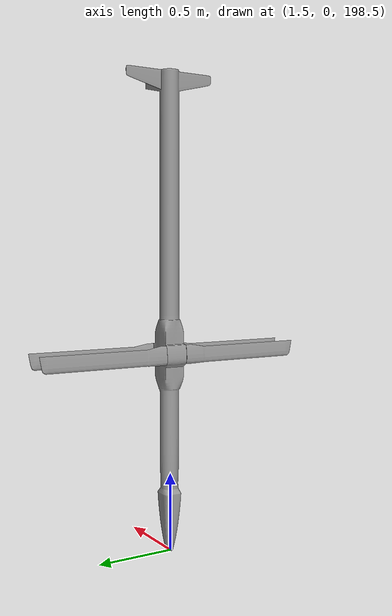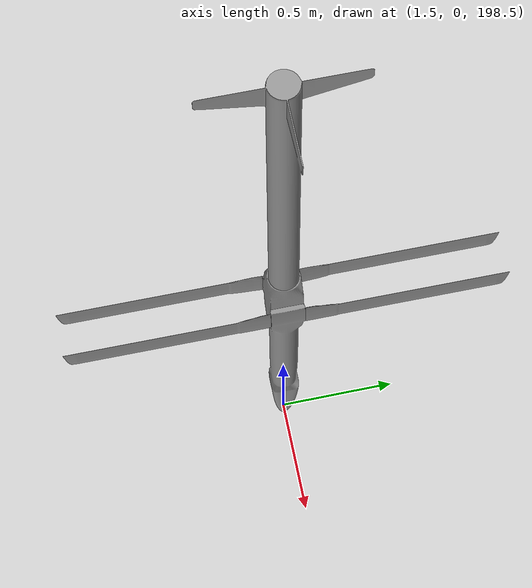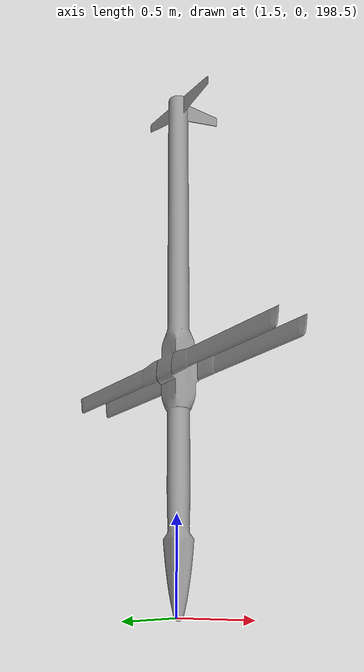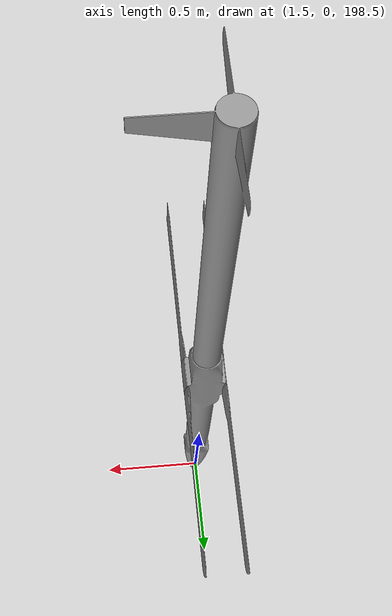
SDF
<?xml version='1.0'?>
<sdf version='1.6'>
  <model name='pitcheron-001-scale-down'>

    <pose>0 0 200 0 1.57 0</pose>

    <link name='base_link'>
      <inertial>
        <mass>47</mass>
        <pose frame=''>0 0 0 0 -0 0</pose>
        <inertia>
          <ixx>0.11644594</ixx>
          <ixy>0</ixy>
          <ixz>0</ixz>
          <iyy>36.28891523</iyy>
          <iyz>0</iyz>
          <izz>36.18768153</izz>
        </inertia>
      </inertial>
      <pose frame=''>0 0 1.490810 0 -0 0</pose>
      <gravity>1</gravity>
      <visual name='base_link_visual'>
        <pose frame=''>0.240000 0 0.020000 0 0 3.14159</pose>
        <geometry>
          <mesh>
            <scale>0.001 0.001 0.001</scale>
            <uri>model://pitcheron-v2/AnalyseModel-Fuselage-003.dae</uri>
          </mesh>
        </geometry>
        <material>
          <script>
            <uri>file://media/materials/scripts/gazebo.material</uri>
            <name>Gazebo/Grey</name>
          </script>
        </material>
        <transparency>0</transparency>
        <cast_shadows>1</cast_shadows>
      </visual>
      <collision name='base_link_collision'>
        <laser_retro>0</laser_retro>
        <max_contacts>10</max_contacts>
        <pose frame=''>0 0 0 0 -0 0</pose>
        <geometry>
          <box>
            <size>3.03932 0.0440676 0.1667</size>
          </box>
        </geometry>
        <surface>
          <friction>
            <ode>
              <mu>1</mu>
              <mu2>1</mu2>
              <fdir1>0 0 0</fdir1>
              <slip1>0</slip1>
              <slip2>0</slip2>
            </ode>
            <torsional>
              <coefficient>1</coefficient>
              <patch_radius>0</patch_radius>
              <surface_radius>0</surface_radius>
              <use_patch_radius>1</use_patch_radius>
              <ode>
                <slip>0</slip>
              </ode>
            </torsional>
          </friction>
          <bounce>
            <restitution_coefficient>0</restitution_coefficient>
            <threshold>1e+06</threshold>
          </bounce>
          <contact>
            <collide_without_contact>0</collide_without_contact>
            <collide_without_contact_bitmask>1</collide_without_contact_bitmask>
            <collide_bitmask>1</collide_bitmask>
            <ode>
              <soft_cfm>0</soft_cfm>
              <soft_erp>0.2</soft_erp>
              <kp>1e+13</kp>
              <kd>1</kd>
              <max_vel>10</max_vel>
              <min_depth>0.01</min_depth>
            </ode>
            <bullet>
              <split_impulse>1</split_impulse>
              <split_impulse_penetration_threshold>-0.01</split_impulse_penetration_threshold>
              <soft_cfm>0</soft_cfm>
              <soft_erp>0.2</soft_erp>
              <kp>1e+13</kp>
              <kd>1</kd>
            </bullet>
          </contact>
        </surface>
      </collision>
      <velocity_decay/>
    </link>

    <!-- control surfaces links -->

    <link name='elevator_link'>
      <inertial>
        <mass>1e-08</mass>
        <inertia>
          <ixx>1e-06</ixx>
          <ixy>0</ixy>
          <iyy>1e-06</iyy>
          <ixz>0</ixz>
          <iyz>0</iyz>
          <izz>1e-06</izz>
        </inertia>
        <pose frame=''>0 0 0 0 -0 0</pose>
      </inertial>
      <pose frame=''>-1.486622 0 1.507310 0 -0 0</pose>
      <visual name='elevator_link_visual'>
        <pose frame=''>0 0 0 0 -0 0</pose>
        <geometry>
          <box>
            <size>0.107408 0.562568 0.044178</size>
          </box>
        </geometry>
        <material>
          <script>
            <uri>file://media/materials/scripts/gazebo.material</uri>
            <name>Gazebo/Grey</name>
          </script>
        </material>
        <transparency>1</transparency>
        <cast_shadows>1</cast_shadows>
      </visual>
    </link>
    <link name='left_wing_bottom_link'>
      <inertial>
        <mass>1e-08</mass>
        <inertia>
          <ixx>1e-06</ixx>
          <ixy>0</ixy>
          <iyy>1e-06</iyy>
          <ixz>0</ixz>
          <iyz>0</iyz>
          <izz>1e-06</izz>
        </inertia>
        <pose frame=''>0 0 0 0 -0 0</pose>
      </inertial>
      <pose frame=''>0.270000 0.110000 1.420000 0 0 0</pose>
      <visual name='left_wing_bottom_link_visual'>
        <pose frame=''>-0.030000 -0.110000 0.090000 0 -0 3.14159</pose>
        <geometry>
          <mesh>
            <scale>0.001 0.001 0.001</scale>
            <uri>model://pitcheron-v2/AnalyseModel-Left-Bottom-Wing-003.dae</uri>
          </mesh>
        </geometry>
        <material>
          <script>
            <uri>file://media/materials/scripts/gazebo.material</uri>
            <name>Gazebo/Grey</name>
          </script>
        </material>
        <transparency>0</transparency>
        <cast_shadows>1</cast_shadows>
      </visual>
    </link>
    <link name='left_wing_top_link'>
      <inertial>
        <mass>1e-08</mass>
        <inertia>
          <ixx>1e-06</ixx>
          <ixy>0</ixy>
          <iyy>1e-06</iyy>
          <ixz>0</ixz>
          <iyz>0</iyz>
          <izz>1e-06</izz>
        </inertia>
        <pose frame=''>0 0 0 0 -0 0</pose>
      </inertial>
      <pose frame=''>0.270000 0.110000 1.600000 0 0 0</pose>
      <visual name='left_wing_top_link_visual'>
        <pose frame=''>-0.030000 -0.110000 -0.090000 0 -0 3.14159</pose>
        <geometry>
          <mesh>
            <scale>0.001 0.001 0.001</scale>
            <uri>model://pitcheron-v2/AnalyseModel-Left-Top-Wing-003.dae</uri>
          </mesh>
        </geometry>
        <material>
          <script>
            <uri>file://media/materials/scripts/gazebo.material</uri>
            <name>Gazebo/Grey</name>
          </script>
        </material>
        <transparency>0</transparency>
        <cast_shadows>1</cast_shadows>
      </visual>
    </link>
    <link name='right_wing_bottom_link'>
      <inertial>
        <mass>1e-08</mass>
        <inertia>
          <ixx>1e-06</ixx>
          <ixy>0</ixy>
          <iyy>1e-06</iyy>
          <ixz>0</ixz>
          <iyz>0</iyz>
          <izz>1e-06</izz>
        </inertia>
        <pose frame=''>0 0 0 0 -0 0</pose>
      </inertial>
      <pose frame=''>0.270000 -0.110000 1.420000 0 0 0</pose>
      <visual name='right_wing_bottom_link_visual'>
        <pose frame=''>-0.030000 0.110000 0.090000 0 -0 3.14159</pose>
        <geometry>
          <mesh>
            <scale>0.001 0.001 0.001</scale>
            <uri>model://pitcheron-v2/AnalyseModel-Right-Bottom-Wing-003.dae</uri>
          </mesh>
        </geometry>
        <material>
          <script>
            <uri>file://media/materials/scripts/gazebo.material</uri>
            <name>Gazebo/Grey</name>
          </script>
        </material>
        <transparency>0</transparency>
        <cast_shadows>1</cast_shadows>
      </visual>
    </link>
    <link name='right_wing_top_link'>
      <inertial>
        <mass>1e-08</mass>
        <inertia>
          <ixx>1e-06</ixx>
          <ixy>0</ixy>
          <iyy>1e-06</iyy>
          <ixz>0</ixz>
          <iyz>0</iyz>
          <izz>1e-06</izz>
        </inertia>
        <pose frame=''>0 0 0 0 -0 0</pose>
      </inertial>
      <pose frame=''>0.270000 -0.110000 1.600000 0 0 0</pose>
      <visual name='right_wing_top_link_visual'>
        <pose frame=''>-0.030000 0.110000 -0.090000 0 -0 3.14159</pose>
        <geometry>
          <mesh>
            <scale>0.001 0.001 0.001</scale>
            <uri>model://pitcheron-v2/AnalyseModel-Right-Top-Wing-003.dae</uri>
          </mesh>
        </geometry>
        <material>
          <script>
            <uri>file://media/materials/scripts/gazebo.material</uri>
            <name>Gazebo/Grey</name>
          </script>
        </material>
        <transparency>0</transparency>
        <cast_shadows>1</cast_shadows>
      </visual>
    </link>
    <link name='rudder_link'>
      <inertial>
        <mass>1e-08</mass>
        <inertia>
          <ixx>1e-06</ixx>
          <ixy>0</ixy>
          <iyy>1e-06</iyy>
          <ixz>0</ixz>
          <iyz>0</iyz>
          <izz>1e-06</izz>
        </inertia>
        <pose frame=''>0 0 0 0 -0 0</pose>
      </inertial>
      <pose frame=''>-1.446240 0 1.682760 0 -0 0</pose>
      <visual name='rudder_link_visual'>
        <pose frame=''>0 0 0 0 -0 0</pose>
        <geometry>
          <box>
            <size>0.130490 0.060154 0.221761</size>
          </box>
        </geometry>
        <material>
          <script>
            <uri>file://media/materials/scripts/gazebo.material</uri>
            <name>Gazebo/Grey</name>
          </script>
          <emissive>0 0 0 1</emissive>
        </material>
        <transparency>1</transparency>
        <cast_shadows>1</cast_shadows>
      </visual>
    </link>

    <!-- sensor and interface links -->

    <link name='pitcheron/imu_link'>
      <pose>0 0 0 0 0 0</pose>
      <inertial>
        <pose>0 0 0 0 0 0</pose>
        <mass>0.015</mass>
        <inertia>
          <ixx>1e-05</ixx>
          <ixy>0</ixy>
          <ixz>0</ixz>
          <iyy>1e-05</iyy>
          <iyz>0</iyz>
          <izz>1e-05</izz>
        </inertia>
      </inertial>
    </link>

    <!-- control surfaces joints -->

    <joint name='elevator_joint' type='fixed'>
      <parent>base_link</parent>
      <child>elevator_link</child>
      <pose frame=''>0 0 0 0 -0.261799 0</pose>
      <physics>
        <ode>
          <limit>
            <cfm>0</cfm>
            <erp>0.2</erp>
          </limit>
          <suspension>
            <cfm>0</cfm>
            <erp>0.2</erp>
          </suspension>
        </ode>
      </physics>
    </joint>
    <joint name='left_wing_bottom_joint' type='revolute'>
      <parent>base_link</parent>
      <child>left_wing_bottom_link</child>
      <pose frame=''>0 0 0 0 -0 0</pose>
      <axis>
        <xyz>0 1 0</xyz>
        <limit>
          <!-- -15/+15 deg. -->
          <lower>-0.261799</lower>
          <upper>0.261799</upper>
        </limit>
        <dynamics>
          <damping>1.000</damping>
        </dynamics>
      </axis>
      <physics>
        <ode>
          <implicit_spring_damper>1</implicit_spring_damper>
        </ode>
      </physics>
    </joint>
    <joint name='left_wing_top_joint' type='revolute'>
      <parent>base_link</parent>
      <child>left_wing_top_link</child>
      <pose frame=''>0 0 0 0 -0 0</pose>
      <axis>
        <xyz>0 1 0</xyz>
        <limit>
          <!-- -15/+15 deg. -->
          <lower>-0.261799</lower>
          <upper>0.261799</upper>
        </limit>
        <dynamics>
          <damping>1.000</damping>
        </dynamics>
      </axis>
      <physics>
        <ode>
          <implicit_spring_damper>1</implicit_spring_damper>
        </ode>
      </physics>
    </joint>
    <joint name='right_wing_bottom_joint' type='revolute'>
      <parent>base_link</parent>
      <child>right_wing_bottom_link</child>
      <pose frame=''>0 0 0 0 -0 0</pose>
      <axis>
        <xyz>0 1 0</xyz>
        <limit>
          <!-- -15/+15 deg. -->
          <lower>-0.261799</lower>
          <upper>0.261799</upper>
        </limit>
        <dynamics>
          <damping>1.000</damping>
        </dynamics>
      </axis>
      <physics>
        <ode>
          <implicit_spring_damper>1</implicit_spring_damper>
        </ode>
      </physics>
    </joint>
    <joint name='right_wing_top_joint' type='revolute'>
      <parent>base_link</parent>
      <child>right_wing_top_link</child>
      <pose frame=''>0 0 0 0 -0 0</pose>
      <axis>
        <xyz>0 1 0</xyz>
        <limit>
          <!-- -15/+15 deg. -->
          <lower>-0.261799</lower>
          <upper>0.261799</upper>
        </limit>
        <dynamics>
          <damping>1.000</damping>
        </dynamics>
      </axis>
      <physics>
        <ode>
          <implicit_spring_damper>1</implicit_spring_damper>
        </ode>
      </physics>
    </joint>
    <joint name='rudder_joint' type='fixed'>
      <parent>base_link</parent>
      <child>rudder_link</child>
      <pose frame=''>0 0 0 0 -0 0</pose>
      <physics>
        <ode>
          <limit>
            <cfm>0</cfm>
            <erp>0.2</erp>
          </limit>
          <suspension>
            <cfm>0</cfm>
            <erp>0.2</erp>
          </suspension>
        </ode>
      </physics>
    </joint>

    <!-- sensor and interface joints -->
    <joint name='pitcheron/imu_joint' type='revolute'>
      <parent>base_link</parent>
      <child>pitcheron/imu_link</child>
      <axis>
        <xyz>1 0 0</xyz>
        <limit>
          <lower>0</lower>
          <upper>0</upper>
          <effort>0</effort>
          <velocity>0</velocity>
        </limit>
        <dynamics>
          <spring_reference>0</spring_reference>
          <spring_stiffness>0</spring_stiffness>
        </dynamics>
        <use_parent_model_frame>1</use_parent_model_frame>
      </axis>
    </joint>

    <static>0</static>

    <allow_auto_disable>1</allow_auto_disable>

    <!-- control surfaces plugins -->

    <plugin name='left_wing_bottom_plugin' filename='libLiftDragPlugin.so'>
      <!-- 6 degrees angle of attack -->
      <a0>0.10472</a0> <!-- angle of attack in radians as a double precision point value -->
      <cla>4.705845611</cla> <!-- as a coeficient unitless as a double precision point value -->
      <cda>0.3817188071</cda> <!-- as a coeficient unitless as a double precision point value -->
      <cma>0.0</cma> <!-- Coefficient of Moment / alpha slope. unitless as a double precision point value NOTE: this is zero on the lane model-->
      <!-- set to 10 degrees -->
      <alpha_stall>0.1745329252</alpha_stall> <!-- is the angle at which it starts stalling -->
      <cla_stall>-6.606203378</cla_stall> <!-- as a coeficient unitless as a double precision point value -->
      <cda_stall>1.28113363</cda_stall> <!-- as a coeficient unitless as a double precision point value -->
      <cma_stall>0</cma_stall> <!-- Coefficient of Moment / alpha slope. unitless as a double precision point value NOTE: this is zero on the lane model-->
      <cp>0 0.280 0</cp> <!-- link coordinates of center of pressure int Vector 3 (x,y,x) relative to center of link -->
      <area>0.6</area> <!-- area of the link in m^2 as a double precision point value -->
      <air_density>0.81935</air_density>  <!-- air density in kg/m3 as a double precision point value -->
      <forward>1 0 0</forward> <!-- Normally, this is taken as a direction parallel to the chord of the airfoil in zero angle of attack forward flight. (x,y,z)-->
      <upward>0 0 1</upward> <!--Inflow velocity orthogonal to forward and upward vectors is considered flow in the wing sweep direction. (x,y.z)-->
      <link_name>base_link</link_name>
      <control_joint_name>left_wing_bottom_joint</control_joint_name>
      <control_joint_rad_to_cl>-0.5</control_joint_rad_to_cl>
      <robotNamespace></robotNamespace>
      <windSubTopic>world_wind</windSubTopic>
    </plugin>
    <plugin name='left_wing_top_plugin' filename='libLiftDragPlugin.so'>
      <a0>0.10472</a0>
      <cla>4.705845611</cla>
      <cda>0.3817188071</cda>
      <cma>0.0</cma>
      <alpha_stall>0.1745329252</alpha_stall>
      <cla_stall>-6.606203378</cla_stall>
      <cda_stall>1.28113363</cda_stall>
      <cma_stall>0</cma_stall>
      <cp>0 0.280 0</cp>
      <area>0.6</area>
      <air_density>0.81935</air_density>
      <forward>1 0 0</forward>
      <upward>0 0 1</upward>
      <link_name>base_link</link_name>
      <control_joint_name>left_wing_top_joint</control_joint_name>
      <control_joint_rad_to_cl>-0.5</control_joint_rad_to_cl>
      <robotNamespace></robotNamespace>
      <windSubTopic>world_wind</windSubTopic>
    </plugin>
    <plugin name='right_wing_bottom_plugin' filename='libLiftDragPlugin.so'>
      <a0>0.10472</a0>
      <cla>4.705845611</cla>
      <cda>0.3817188071</cda>
      <cma>0.0</cma>
      <alpha_stall>0.1745329252</alpha_stall>
      <cla_stall>-6.606203378</cla_stall>
      <cda_stall>1.28113363</cda_stall>
      <cma_stall>0</cma_stall>
      <cp>0 -0.280 0</cp>
      <area>0.6</area>
      <air_density>0.81935</air_density>
      <forward>1 0 0</forward>
      <upward>0 0 1</upward>
      <link_name>base_link</link_name>
      <control_joint_name>right_wing_bottom_joint</control_joint_name>
      <control_joint_rad_to_cl>-0.5</control_joint_rad_to_cl>
      <robotNamespace></robotNamespace>
      <windSubTopic>world_wind</windSubTopic>
    </plugin>
    <plugin name='right_wing_top_plugin' filename='libLiftDragPlugin.so'>
      <a0>0.10472</a0>
      <cla>4.705845611</cla>
      <cda>0.3817188071</cda>
      <cma>0.0</cma>
      <alpha_stall>0.1745329252</alpha_stall>
      <cla_stall>-6.606203378</cla_stall>
      <cda_stall>1.28113363</cda_stall>
      <cma_stall>0</cma_stall>
      <cp>0 -0.280 0</cp>
      <area>0.6</area>
      <air_density>0.81935</air_density>
      <forward>1 0 0</forward>
      <upward>0 0 1</upward>
      <link_name>base_link</link_name>
      <control_joint_name>right_wing_top_joint</control_joint_name>
      <control_joint_rad_to_cl>-0.5</control_joint_rad_to_cl>
      <robotNamespace></robotNamespace>
      <windSubTopic>world_wind</windSubTopic>
    </plugin>
    <plugin name='rudder_pliugin' filename='libLiftDragPlugin.so'>
      <a0>0.0</a0>
      <cla>4.752798721</cla>
      <cda>0.6417112299</cda>
      <cma>0.0</cma>
      <alpha_stall>0.3391428111</alpha_stall>
      <cla_stall>-3.85</cla_stall>
      <cda_stall>-0.9233984055</cda_stall>
      <cma_stall>0</cma_stall>
      <cp>-0.5 0 0.05</cp>
      <area>0.2</area>
      <air_density>0.81935</air_density>
      <forward>1 0 0</forward>
      <upward>0 1 0</upward>
      <link_name>base_link</link_name>
      <control_joint_name>rudder_link</control_joint_name>
      <control_joint_rad_to_cl>4.0</control_joint_rad_to_cl>
      <robotNamespace/>
      <windSubTopic>world_wind</windSubTopic>
    </plugin>
    <plugin name='elevator_plugin' filename='libLiftDragPlugin.so'>
      <a0>-0.2</a0>
      <cla>4.752798721</cla>
      <cda>0.6417112299</cda>
      <cma>0.0</cma>
      <alpha_stall>0.3391428111</alpha_stall>
      <cla_stall>-3.85</cla_stall>
      <cda_stall>-0.9233984055</cda_stall>
      <cma_stall>0</cma_stall>
      <cp>-0.5 0 0</cp>
      <area>0.01</area>
      <air_density>1.2041</air_density>
      <forward>1 0 0</forward>
      <upward>0 0 1</upward>
      <link_name>base_link</link_name>
      <control_joint_name>elevator_link</control_joint_name>
      <control_joint_rad_to_cl>-4.0</control_joint_rad_to_cl>
      <robotNamespace></robotNamespace>
      <windSubTopic>world_wind</windSubTopic>
    </plugin>

    <!-- sensors and interface plugins-->
    <plugin name='gazebo_imu_plugin' filename='libgazebo_imu_plugin.so'>
      <robotNamespace></robotNamespace>
      <linkName>pitcheron/imu_link</linkName>
      <imuTopic>/imu</imuTopic>
      <gyroscopeNoiseDensity>0.0003394</gyroscopeNoiseDensity>
      <gyroscopeRandomWalk>3.8785e-05</gyroscopeRandomWalk>
      <gyroscopeBiasCorrelationTime>1000.0</gyroscopeBiasCorrelationTime>
      <gyroscopeTurnOnBiasSigma>0.0087</gyroscopeTurnOnBiasSigma>
      <accelerometerNoiseDensity>0.004</accelerometerNoiseDensity>
      <accelerometerRandomWalk>0.006</accelerometerRandomWalk>
      <accelerometerBiasCorrelationTime>300.0</accelerometerBiasCorrelationTime>
      <accelerometerTurnOnBiasSigma>0.196</accelerometerTurnOnBiasSigma>
    </plugin>

  </model>
</sdf>
